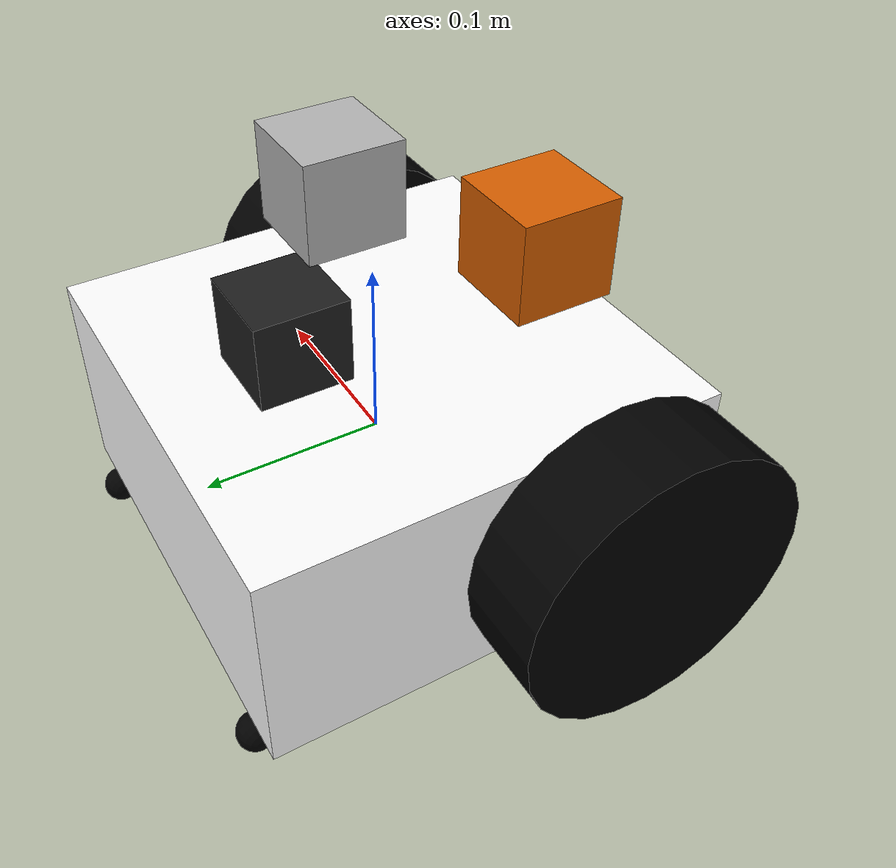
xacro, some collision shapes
<?xml version="1.0"?>
<robot name="mrl" xmlns:xacro="http://www.ros.org/wiki/xacro">

<xacro:property name="base_l" value="0.25" />
<xacro:property name="base_w" value="0.25" />
<xacro:property name="base_h" value="0.12" /> <!--base height-->

<xacro:property name="wheel_r" value="0.08" />
<xacro:property name="wheel_l" value="0.05" /> <!--wheel thickness-->

<xacro:property name="test" value="${wheel_r+wheel_l}" />
<xacro:property name="camera_link" value="0.05" />

<!-- Import all Gazebo-customization elements, including Gazebo colors -->
  <!--xacro:include filename="$(find mrl1_description)/urdf/rrbot.gazebo" /-->
  <!-- Import Rviz colors -->
  <xacro:include filename="$(find mrl1_description)/urdf/materials.xacro" />

<!-- base_footprint is a fictitious link(frame) that is on the ground right below base_link origin,
             navigation stack depends on this frame -->

<link name="base_link">
    <visual>
      <geometry>
        <box size="0.25 0.25 0.12"/>
      </geometry>
     <origin rpy="0 0 0" xyz="0 0 0"/> <!--forward is 'y', up is 'z'-->
     <material name="white">
        <color rgba="1 1 1 1"/>
      </material>
    </visual>

    <collision>
      <geometry>
        <box size="0.25 0.25 0.12"/>
      </geometry>
    </collision>

    <inertial>
      <mass value="3.6"/>
      <!--inertia ixx="${36*(base_l*base_l+base_h*base_h)/12}" ixy="0.0" ixz="0.0" iyy="${36*(base_w*base_w+base_h*base_h)/12}" iyz="0.0" izz="${36*(base_l*base_l+base_w*base_w)/12}"/-->
      <inertia ixx="0.2307" ixy="0.0" ixz="0.0" iyy="0.2307" iyz="0.0" izz="0.2307"/>
    </inertial>

  </link>

<!--Back Caster(left)-->
<link name="caster_left">
    <visual>
      <geometry>
        <sphere radius="0.01"/>
      </geometry>
	<origin xyz="0 0 0"/> <!--this is relative to the joint frame defined in 'joint' tag-->
     <material name="black">
        <color rgba="0 0 0 1"/>
      </material>
    </visual>

    <collision>
     <origin xyz="0 0 0"/>
      <geometry>
        <sphere radius="0.01"/>
      </geometry>
    </collision>

    <inertial>
      <mass value="0.2"/>
      <inertia ixx="0.001" ixy="0.0" ixz="0.0" iyy="0.001" iyz="0.0" izz="0.001"/>
    </inertial>
  </link>

  <joint name="left_caster_joint" type="continuous">
  <axis xyz="0 0 1"/>
    <parent link="base_link"/>
    <child link="caster_left"/>
     <origin xyz="0.1 0.124 -0.07" rpy="0 1.57 0"/> <!--this is relative to the 'parent' frame-->
  </joint>

<!--Back Caster(right)-->
<link name="caster_right">
    <visual>
      <geometry>
        <sphere radius="0.01"/>
      </geometry>
	<origin xyz="0 0 0"/> <!--this is relative to the joint frame defined in 'joint' tag-->
     <material name="black">
        <color rgba="0 0 0 1"/>
      </material>
    </visual>

    <collision>
     <origin xyz="0 0 0"/>
      <geometry>
        <sphere radius="0.01"/>
      </geometry>
    </collision>

    <inertial>
      <mass value="0.2"/>
      <inertia ixx="0.000001" ixy="0.0" ixz="0.0" iyy="0.000001" iyz="0.0" izz="0.000001"/>
    </inertial>
  </link>

  <joint name="right_caster_joint" type="continuous">
  <axis xyz="0 0 1"/>
    <parent link="base_link"/>
    <child link="caster_right"/>
     <origin xyz="-0.1 0.124 -0.07" rpy="0 1.57 0"/> <!--this is relative to the 'parent' frame-->
  </joint>

<!--left wheel-->
<link name="left_wheel">
    <visual>
      <geometry>
        <cylinder length="0.05" radius="0.08"/>
      </geometry>
	<origin xyz="0 0 0"/>
     <material name="black">
        <color rgba="0 0 0 1"/>
      </material>
    </visual>

    <collision>
     <origin xyz="0 0 0"/>
      <geometry>
        <cylinder length="0.05" radius="0.08"/>
      </geometry>
    </collision>

    <inertial>
      <mass value="1"/>
      <!--inertia ixx="${0.1*(3*wheel_r^2+wheel_h^2)/12}" ixy="0.0" ixz="0.0" iyy="${0.1*(3*wheel_r^2+wheel_h^2)/12}" iyz="0.0" izz="${0.1*wheel_r^2/2}"/-->
<inertia ixx="0.0032" ixy="0.0" ixz="0.0" iyy="0.00368" iyz="0.0" izz="0.00368"/>
    </inertial>
  </link>

  <joint name="left_wheel_joint" type="continuous">
  <axis xyz="0 0 1"/>
    <parent link="base_link"/>
    <child link="left_wheel"/>
     <origin xyz="0.151 -0.06 0" rpy="0 1.57 0"/>
  </joint>

<!--right wheel-->
<link name="right_wheel">
    <visual>
      <geometry>
        <cylinder length="0.05" radius="0.08"/>
      </geometry>
	<origin xyz="0 0 0"/>
    <material name="black"/>
    </visual>

   <collision>
    <origin xyz="0 0 0"/>
      <geometry>
        <cylinder length="0.01" radius="0.08"/>
      </geometry>
    </collision>

    <inertial>
      <mass value="1"/>
      <!--inertia ixx="${0.1*(3*wheel_r^2+wheel_h^2)/12}" ixy="0.0" ixz="0.0" iyy="${0.1*(3*wheel_r^2+wheel_h^2)/12}" iyz="0.0" izz="${0.1*wheel_r^2/2}"/-->
     <inertia ixx="0.0032" ixy="0.0" ixz="0.0" iyy="0.00368" iyz="0.0" izz="0.00368"/>
    </inertial>
  </link>

  <joint name="right_wheel_joint" type="continuous">
  <axis xyz="0 0 1"/>
    <parent link="base_link"/>
    <child link="right_wheel"/>
     <origin xyz="-0.151 -0.06 0" rpy="0 1.57 0"/>
  </joint>

<!--hokuyo laser-->
  <link name="hokuyo_link">
    <visual>
    <geometry>
        <mesh filename="package://mrl1_description/meshes/hokuyo.dae"/>
      </geometry>
    <origin xyz="0 0 0" rpy="0 0 0"/>
    </visual>

    <collision>
      <origin xyz="0 0 0"/>
      <geometry>
	<box size="0.06 0.06 0.06"/>
      </geometry>
    </collision>

    <inertial>
      <mass value="0.1" />
      <origin xyz="0 0 0" rpy="0 0 0"/>
      <inertia ixx="0.001" ixy="0" ixz="0" iyy="0.001" iyz="0" izz="0.001" />
    </inertial>
  </link>

  <joint name="hokuyo_joint" type="fixed">
    <origin xyz="0 -0.1 0.09" rpy="0 0 -1.57"/>
    <parent link="base_link"/>
    <child link="hokuyo_link"/>
  </joint>

 <!--Kinect Stand-->

 <link name="kinect_stand">
    <collision>
      <origin xyz="0 0 0" rpy="0 0 0"/>
      <geometry>
	<box size="${camera_link} ${camera_link} ${camera_link}"/>
      </geometry>
    </collision>

    <visual>
      <origin xyz="0 0 0" rpy="0 0 0"/>
      <geometry>
	<box size="${camera_link} ${camera_link} ${camera_link}"/>
      </geometry>
      <!--material name="red"/-->
    </visual>

    <inertial>
      <mass value="1e-5" />
      <origin xyz="0 0 0" rpy="0 0 0"/>
      <inertia ixx="1e-6" ixy="0" ixz="0" iyy="1e-6" iyz="0" izz="1e-6" />
    </inertial>
  </link>

<joint name="kinect_stand_joint" type="fixed">
    <axis xyz="0 1 0" />
    <origin xyz="0 0.05 0.0825" rpy="0 0 0"/>
    <parent link="base_link"/>
    <child link="kinect_stand"/>
  </joint>

 <!-- Kinect Camera -->
  <link name="camera_link">
    <collision>
      <origin xyz="0 0 0" rpy="0 0 0"/>
      <geometry>
	<box size="${camera_link} ${camera_link} ${camera_link}"/>
      </geometry>
    </collision>

    <visual>
      <origin xyz="0 0 0" rpy="0 0 0"/>
      <geometry>
	<mesh filename="package://mrl1_description/meshes/kinect.dae"/>
      </geometry>
      <!--material name="red"/-->
    </visual>

    <inertial>
      <mass value="1e-5" />
      <origin xyz="0 0 0" rpy="0 0 0"/>
      <inertia ixx="1e-6" ixy="0" ixz="0" iyy="1e-6" iyz="0" izz="1e-6" />
    </inertial>
  </link>

<joint name="camera_joint" type="fixed">
    <axis xyz="0 1 0" />
    <origin xyz="0 -0.03 0.075" rpy="0 0 -1.57"/>
    <parent link="kinect_stand"/>
    <child link="camera_link"/>
  </joint>

<!--Transmission to left motor-->
<transmission name="tran1">
    <type>transmission_interface/SimpleTransmission</type>
    <joint name="left_wheel_joint"/>
    <actuator name="left_motor">
      <hardwareInterface>EffortJointInterface</hardwareInterface>
      <mechanicalReduction>1</mechanicalReduction>
    </actuator>
  </transmission>

<!--Transmission to right motor-->
<transmission name="tran2">
    <type>transmission_interface/SimpleTransmission</type>
    <joint name="right_wheel_joint"/>
    <actuator name="right_motor">
      <hardwareInterface>EffortJointInterface</hardwareInterface>
      <mechanicalReduction>1</mechanicalReduction>
    </actuator>
  </transmission>

<!--GAZEBO COMPONENTS-->

  <!-- ros_control plugin -->
  <gazebo>
    <plugin name="gazebo_ros_control" filename="libgazebo_ros_control.so">
      <robotNamespace>/mrl</robotNamespace>
    </plugin>
  </gazebo>

  <!-- Base Footprint -->
  <gazebo reference="base_footprint">
    <material>Gazebo/white</material>
  </gazebo>

  <!-- Base Link -->
  <gazebo reference="base_link">
    <material>Gazebo/white</material>
  </gazebo>

  <!-- Back Caster(Left) -->
  <gazebo reference="caster_left">
    <material>Gazebo/white</material>
    <mu1>0.5</mu1>
    <mu2>0.5</mu2>
  </gazebo>

  <!-- Back Caster(right) -->
  <gazebo reference="caster_right">
    <material>Gazebo/white</material>
    <mu1>0.5</mu1>
    <mu2>0.5</mu2>
  </gazebo>

  <!-- Left Wheel -->
  <gazebo reference="left_wheel">
    <material>Gazebo/black</material>
    <mu1>0.5</mu1>
    <mu2>0.5</mu2>
    <dampingFactor>0.4</dampingFactor>
  </gazebo>

  <!-- Right Wheel -->
  <gazebo reference="right_wheel">
    <material>Gazebo/black</material>
     <mu1>0.5</mu1>
     <mu2>0.5</mu2>
     <dampingFactor>0.4</dampingFactor>
  </gazebo>

 <!-- Kinect Stand -->
  <gazebo reference="kinect_stand">
    <material>Gazebo/black</material>
  </gazebo>

  <!-- hokuyo -->
  <gazebo reference="hokuyo_link">
    <sensor type="ray" name="head_hokuyo_sensor">
      <pose>0 0 0 0 0 0</pose>
      <visualize>true</visualize>
      <update_rate>40</update_rate>
      <ray>
        <scan>
          <horizontal>
            <samples>4</samples>
            <resolution>1</resolution>
            <min_angle>-1.570796</min_angle>
            <max_angle>1.570796</max_angle>
          </horizontal>
        </scan>
        <range>
          <min>0.1</min>
          <max>1.0</max>
          <resolution>0.01</resolution>
        </range>
        <noise>
          <type>gaussian</type>
          <mean>0.0</mean>
          <stddev>0.01</stddev>
        </noise>
      </ray>
      <plugin name="gazebo_ros_head_hokuyo_controller" filename="libgazebo_ros_laser.so">
        <topicName>/mrl/laser/scan</topicName>
        <frameName>hokuyo_link</frameName>
      </plugin>
    </sensor>
  </gazebo>

<!-- camera -->
          <!-- Noise is sampled independently per pixel on each frame.
               That pixel's noise value is added to each of its color
               channels, which at that point lie in the range [0,1]. -->
          <!--CHANGE HERE FOR DIFFERENT ROBOTS!!!-->

<!--Kinect-->
<!-- SENSOR -->
<gazebo reference="camera_link">
    <sensor type="depth" name="openni_camera">
        <always_on>1</always_on>
        <visualize>true</visualize>
        <camera>
            <horizontal_fov>1.047</horizontal_fov>
            <image>
                <width>640</width>
                <height>480</height>
                <format>R8G8B8</format>
            </image>
            <depth_camera>

            </depth_camera>
            <clip>
                <near>0.1</near>
                <far>100</far>
            </clip>
        </camera>
        <plugin name="camera_controller" filename="libgazebo_ros_openni_kinect.so">
            <alwaysOn>true</alwaysOn>cl
                <updateRate>10.0</updateRate>
                <cameraName>camera</cameraName>
                <frameName>camera_link</frameName>
            <imageTopicName>mrlKinect/rgb/image_raw</imageTopicName>
            <depthImageTopicName>mrlKinect/depth/image_raw</depthImageTopicName>
            <pointCloudTopicName>mrlKinect/depth/pointCloud</pointCloudTopicName>
            <cameraInfoTopicName>mrlKinect/rgb/camera_info</cameraInfoTopicName>
            <depthImageCameraInfoTopicName>mrlKinect/depth/camera_info</depthImageCameraInfoTopicName>
            <pointCloudCutoff>0.4</pointCloudCutoff>
                <hackBaseline>0.07</hackBaseline>
                <distortionK1>0.0</distortionK1>
                <distortionK2>0.0</distortionK2>
                <distortionK3>0.0</distortionK3>
                <distortionT1>0.0</distortionT1>
                <distortionT2>0.0</distortionT2>
            <CxPrime>0.0</CxPrime>
            <Cx>0.0</Cx>
            <Cy>0.0</Cy>
            <focalLength>0.0</focalLength>
            </plugin>
    </sensor>
</gazebo>

</robot>

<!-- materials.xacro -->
<robot>

  <material name="black">
    <color rgba="0.0 0.0 0.0 1.0"/>
  </material>

  <material name="blue">
    <color rgba="0.0 0.0 0.8 1.0"/>
  </material>

  <material name="green">
    <color rgba="0.0 0.8 0.0 1.0"/>
  </material>

  <material name="grey">
    <color rgba="0.2 0.2 0.2 1.0"/>
  </material>

  <material name="red">
    <color rgba="0.8 0.0 0.0 1.0"/>
  </material>

  <material name="white">
    <color rgba="1.0 1.0 1.0 1.0"/>
  </material>

</robot>
